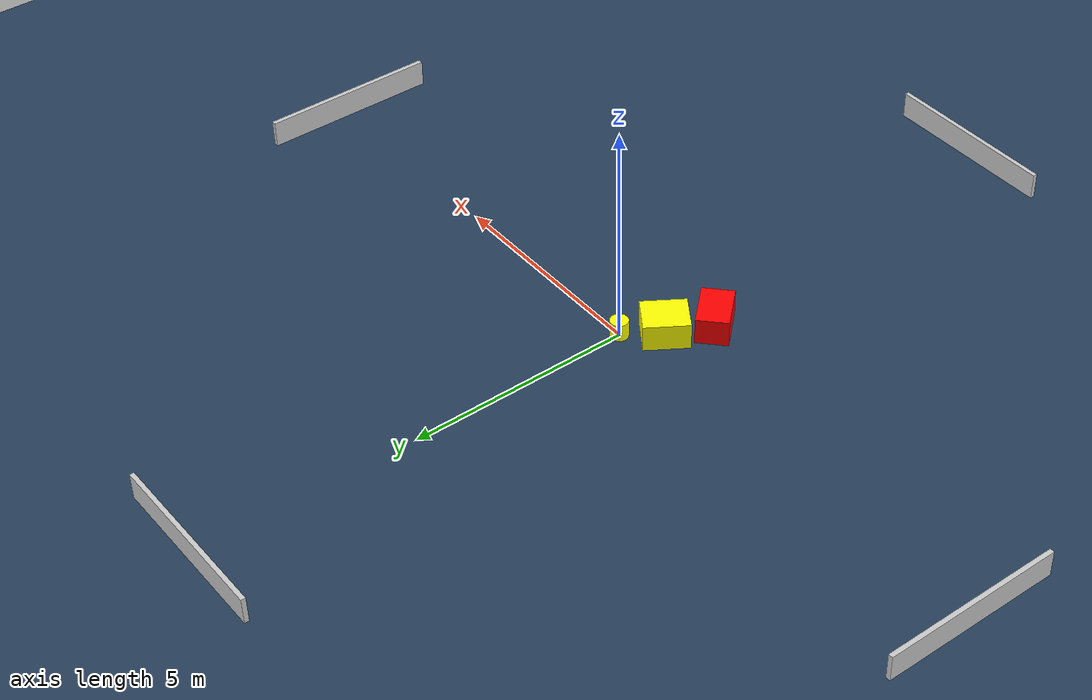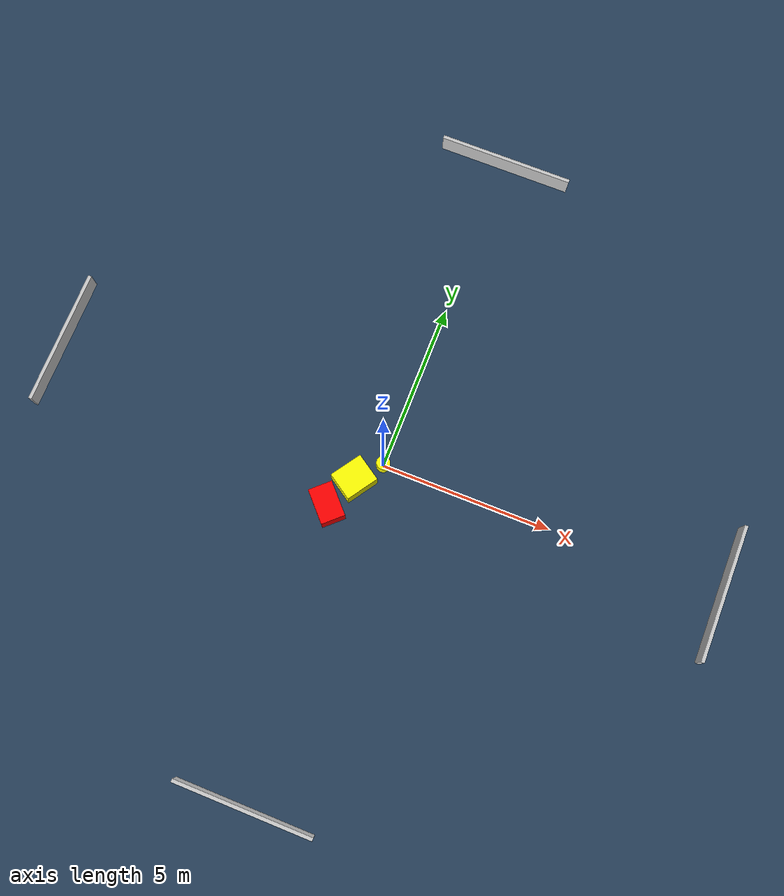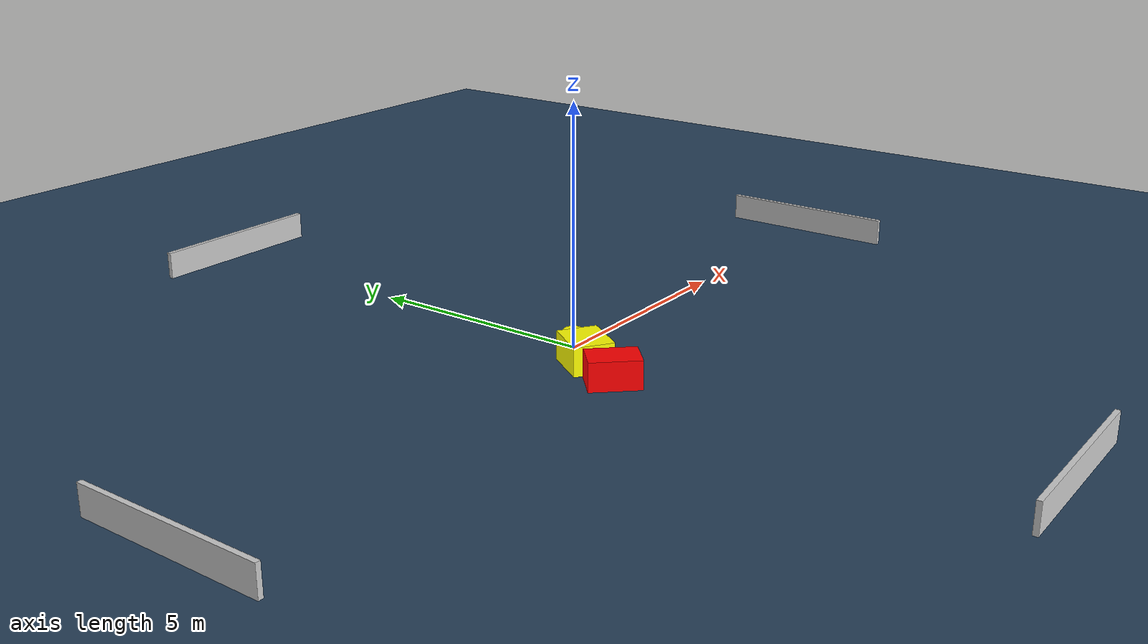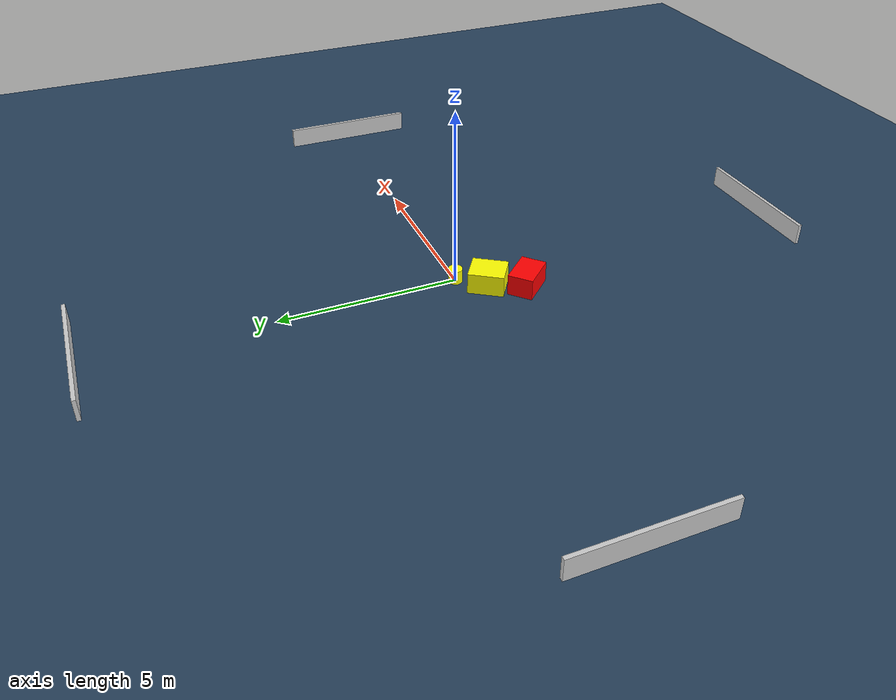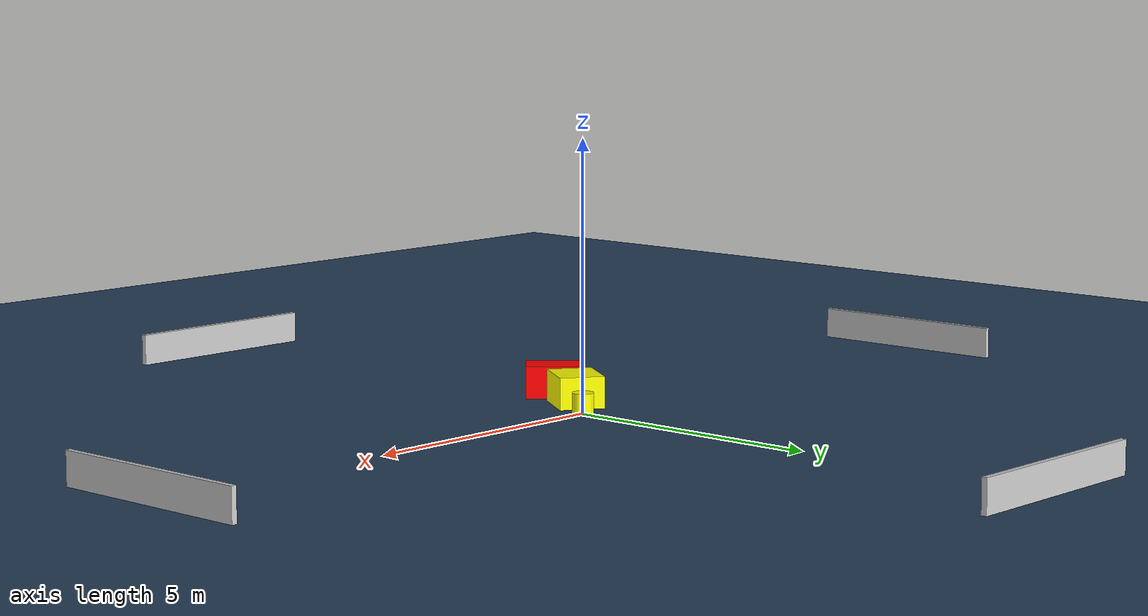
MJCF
<?xml version="1.0" ?>
<mujoco model="generated_environment">
  <option timestep="0.01" integrator="RK4" cone="elliptic"/>
  <default>
    <geom density="1"/>
  </default>
  <asset>
    <texture builtin="gradient" height="3072" name="skybox" rgb1="0.3 0.5 0.7" rgb2="0 0 0" type="skybox" width="512"/>
    <texture builtin="checker" height="300" name="groundplane" rgb1="0.2 0.3 0.4" rgb2="0.1 0.2 0.3" type="2d" width="300"/>
    <material name="groundplane" reflectance="0.2" texrepeat="5 5" texture="groundplane"/>
  </asset>
  <worldbody>
    <light dir="0 0 -1" directional="true" pos="0 0 1.5"/>
    <geom condim="3" friction="0.5 0.005 0.001" material="groundplane" name="floor" pos="0 0 0" size="0 0 0.05" type="plane"/>
    <body name="walls">
      <geom name="wall_1" condim="4" pos="-10.0 0.0 0.3" rgba="0.800000011920929 0.800000011920929 0.800000011920929 1.0" size="0.05 2.0 0.3" type="box"/>
      <geom name="wall_2" condim="4" pos="10.0 0.0 0.3" rgba="0.800000011920929 0.800000011920929 0.800000011920929 1.0" size="0.05 2.0 0.3" type="box"/>
      <geom name="wall_3" condim="4" pos="0.0 -10.0 0.3" rgba="0.800000011920929 0.800000011920929 0.800000011920929 1.0" size="2.0 0.05 0.3" type="box"/>
      <geom name="wall_4" condim="4" pos="0.0 10.0 0.3" rgba="0.800000011920929 0.800000011920929 0.800000011920929 1.0" size="2.0 0.05 0.3" type="box"/>
    </body>
    <body name="robot">
      <joint name="joint_x" type="slide" pos="0 0 0" axis="1 0 0"/>
      <joint name="joint_y" type="slide" pos="0 0 0" axis="0 1 0"/>
      <geom name="robot" type="cylinder" pos="0.0 0.0 0.2" size="0.2 0.2 0.0" mass="5.0" friction="1.0 0.005 0.0001" condim="4" rgba="1.0 1.0 0.0 1.0"/>
    </body>
    <body name="obstacle_1_movable">
      <geom name="obstacle_1_movable" condim="4" pos="-0.59405598285301 -0.7171151763616422 0.3" euler="0 0 56.416169825240075" friction="0.0 0.005 0.001" rgba="1.0 1.0 0.0 1.0" size="0.4962675952480186 0.4216618343527111 0.3" type="box" mass="0.1"/>
      <joint type="free"/>
    </body>
    <body name="obstacle_2_static">
      <geom name="obstacle_2_static" condim="4" pos="-1.0329278823990096 -1.6723193336154907 0.3" euler="0 0 222.91854810651483" friction="0.0 0.005 0.001" rgba="1.0 0.0 0.0 1.0" size="0.3531625993236759 0.5222242855647702 0.3" type="box"/>
    </body>
  </worldbody>
  <actuator>
    <motor name="actuator_x" joint="joint_x" gear="1" ctrlrange="-1 1"/>
    <motor name="actuator_y" joint="joint_y" gear="1" ctrlrange="-1 1"/>
  </actuator>
</mujoco>
